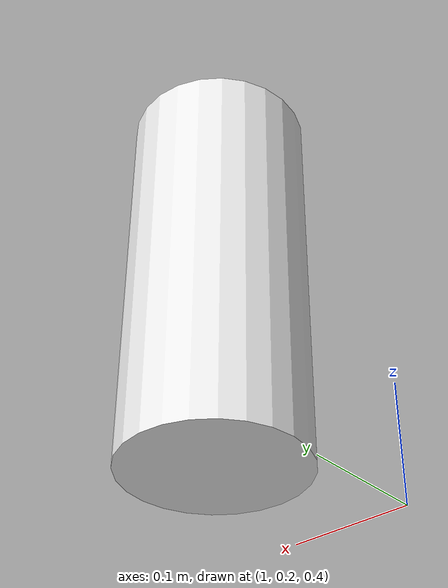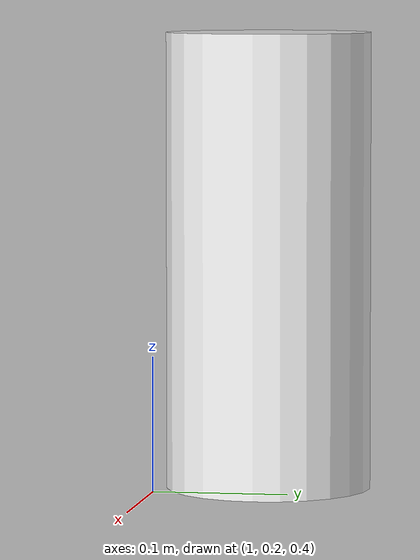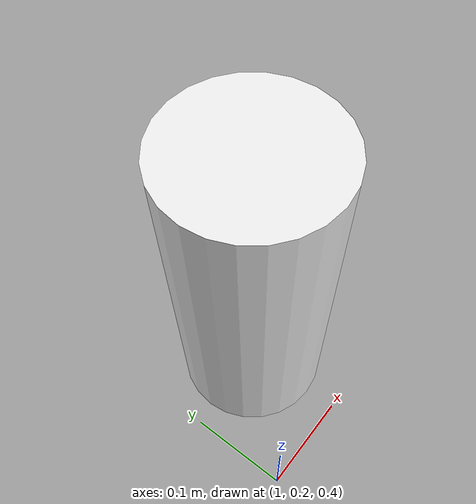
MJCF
<mujoco model="base_point">
    <asset>
        <texture file="white-marble.png" type="2d" name="aluminum"/>
        <material name="cylinder" reflectance="0.5" texrepeat="5 5" texture="aluminum" texuniform="true"/>
    </asset>
    <worldbody>
        <body name="mount_base_link" pos="1.09 0.30 0.72" quat="-1 0 0 1">
      		<geom pos="0 0 -0.14" size="0.07 0.14" type="cylinder" friction="1 0.005 0.0001" name="basecylinder_collision"/>
      		<geom pos="0 0 -0.14" material="cylinder" size="0.072 0.16" type="cylinder" conaffinity="0" contype="0"/>
        </body>
    </worldbody>
</mujoco>
